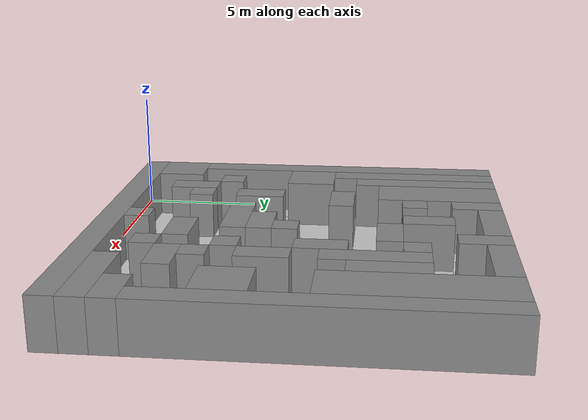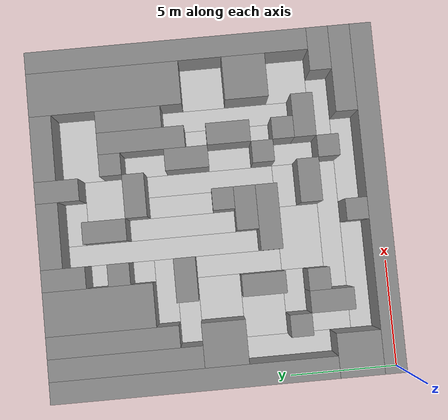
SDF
<sdf version="1.9">
 <world name="cave_world">
  <model name="cave_walls">
   <static>true</static>
   <link name="cave">
    <collision name="wall_0_collision">
     <pose>8.000 0.500 1.000 0 0 0</pose>
     <geometry><box><size>16.000 1.000 2.000</size></box></geometry>
    </collision>
    <visual name="wall_0_visual">
     <pose>8.000 0.500 1.000 0 0 0</pose>
     <geometry><box><size>16.000 1.000 2.000</size></box></geometry>
     <material><ambient>0.55 0.55 0.55 1</ambient><diffuse>0.55 0.55 0.55 1</diffuse></material>
    </visual>
    <collision name="wall_1_collision">
     <pose>1.000 2.000 1.000 0 0 0</pose>
     <geometry><box><size>2.000 2.000 2.000</size></box></geometry>
    </collision>
    <visual name="wall_1_visual">
     <pose>1.000 2.000 1.000 0 0 0</pose>
     <geometry><box><size>2.000 2.000 2.000</size></box></geometry>
     <material><ambient>0.55 0.55 0.55 1</ambient><diffuse>0.55 0.55 0.55 1</diffuse></material>
    </visual>
    <collision name="wall_2_collision">
     <pose>7.500 1.500 1.000 0 0 0</pose>
     <geometry><box><size>1.000 1.000 2.000</size></box></geometry>
    </collision>
    <visual name="wall_2_visual">
     <pose>7.500 1.500 1.000 0 0 0</pose>
     <geometry><box><size>1.000 1.000 2.000</size></box></geometry>
     <material><ambient>0.55 0.55 0.55 1</ambient><diffuse>0.55 0.55 0.55 1</diffuse></material>
    </visual>
    <collision name="wall_3_collision">
     <pose>14.000 1.500 1.000 0 0 0</pose>
     <geometry><box><size>4.000 1.000 2.000</size></box></geometry>
    </collision>
    <visual name="wall_3_visual">
     <pose>14.000 1.500 1.000 0 0 0</pose>
     <geometry><box><size>4.000 1.000 2.000</size></box></geometry>
     <material><ambient>0.55 0.55 0.55 1</ambient><diffuse>0.55 0.55 0.55 1</diffuse></material>
    </visual>
    <collision name="wall_4_collision">
     <pose>3.500 3.000 1.000 0 0 0</pose>
     <geometry><box><size>1.000 2.000 2.000</size></box></geometry>
    </collision>
    <visual name="wall_4_visual">
     <pose>3.500 3.000 1.000 0 0 0</pose>
     <geometry><box><size>1.000 2.000 2.000</size></box></geometry>
     <material><ambient>0.55 0.55 0.55 1</ambient><diffuse>0.55 0.55 0.55 1</diffuse></material>
    </visual>
    <collision name="wall_5_collision">
     <pose>10.500 2.500 1.000 0 0 0</pose>
     <geometry><box><size>1.000 1.000 2.000</size></box></geometry>
    </collision>
    <visual name="wall_5_visual">
     <pose>10.500 2.500 1.000 0 0 0</pose>
     <geometry><box><size>1.000 1.000 2.000</size></box></geometry>
     <material><ambient>0.55 0.55 0.55 1</ambient><diffuse>0.55 0.55 0.55 1</diffuse></material>
    </visual>
    <collision name="wall_6_collision">
     <pose>15.000 2.500 1.000 0 0 0</pose>
     <geometry><box><size>2.000 1.000 2.000</size></box></geometry>
    </collision>
    <visual name="wall_6_visual">
     <pose>15.000 2.500 1.000 0 0 0</pose>
     <geometry><box><size>2.000 1.000 2.000</size></box></geometry>
     <material><ambient>0.55 0.55 0.55 1</ambient><diffuse>0.55 0.55 0.55 1</diffuse></material>
    </visual>
    <collision name="wall_7_collision">
     <pose>0.500 9.500 1.000 0 0 0</pose>
     <geometry><box><size>1.000 13.000 2.000</size></box></geometry>
    </collision>
    <visual name="wall_7_visual">
     <pose>0.500 9.500 1.000 0 0 0</pose>
     <geometry><box><size>1.000 13.000 2.000</size></box></geometry>
     <material><ambient>0.55 0.55 0.55 1</ambient><diffuse>0.55 0.55 0.55 1</diffuse></material>
    </visual>
    <collision name="wall_8_collision">
     <pose>4.500 3.500 1.000 0 0 0</pose>
     <geometry><box><size>1.000 1.000 2.000</size></box></geometry>
    </collision>
    <visual name="wall_8_visual">
     <pose>4.500 3.500 1.000 0 0 0</pose>
     <geometry><box><size>1.000 1.000 2.000</size></box></geometry>
     <material><ambient>0.55 0.55 0.55 1</ambient><diffuse>0.55 0.55 0.55 1</diffuse></material>
    </visual>
    <collision name="wall_9_collision">
     <pose>9.000 3.500 1.000 0 0 0</pose>
     <geometry><box><size>2.000 1.000 2.000</size></box></geometry>
    </collision>
    <visual name="wall_9_visual">
     <pose>9.000 3.500 1.000 0 0 0</pose>
     <geometry><box><size>2.000 1.000 2.000</size></box></geometry>
     <material><ambient>0.55 0.55 0.55 1</ambient><diffuse>0.55 0.55 0.55 1</diffuse></material>
    </visual>
    <collision name="wall_10_collision">
     <pose>12.000 3.500 1.000 0 0 0</pose>
     <geometry><box><size>2.000 1.000 2.000</size></box></geometry>
    </collision>
    <visual name="wall_10_visual">
     <pose>12.000 3.500 1.000 0 0 0</pose>
     <geometry><box><size>2.000 1.000 2.000</size></box></geometry>
     <material><ambient>0.55 0.55 0.55 1</ambient><diffuse>0.55 0.55 0.55 1</diffuse></material>
    </visual>
    <collision name="wall_11_collision">
     <pose>15.500 9.500 1.000 0 0 0</pose>
     <geometry><box><size>1.000 13.000 2.000</size></box></geometry>
    </collision>
    <visual name="wall_11_visual">
     <pose>15.500 9.500 1.000 0 0 0</pose>
     <geometry><box><size>1.000 13.000 2.000</size></box></geometry>
     <material><ambient>0.55 0.55 0.55 1</ambient><diffuse>0.55 0.55 0.55 1</diffuse></material>
    </visual>
    <collision name="wall_12_collision">
     <pose>2.500 4.500 1.000 0 0 0</pose>
     <geometry><box><size>1.000 1.000 2.000</size></box></geometry>
    </collision>
    <visual name="wall_12_visual">
     <pose>2.500 4.500 1.000 0 0 0</pose>
     <geometry><box><size>1.000 1.000 2.000</size></box></geometry>
     <material><ambient>0.55 0.55 0.55 1</ambient><diffuse>0.55 0.55 0.55 1</diffuse></material>
    </visual>
    <collision name="wall_13_collision">
     <pose>11.500 4.500 1.000 0 0 0</pose>
     <geometry><box><size>1.000 1.000 2.000</size></box></geometry>
    </collision>
    <visual name="wall_13_visual">
     <pose>11.500 4.500 1.000 0 0 0</pose>
     <geometry><box><size>1.000 1.000 2.000</size></box></geometry>
     <material><ambient>0.55 0.55 0.55 1</ambient><diffuse>0.55 0.55 0.55 1</diffuse></material>
    </visual>
    <collision name="wall_14_collision">
     <pose>4.500 6.000 1.000 0 0 0</pose>
     <geometry><box><size>1.000 2.000 2.000</size></box></geometry>
    </collision>
    <visual name="wall_14_visual">
     <pose>4.500 6.000 1.000 0 0 0</pose>
     <geometry><box><size>1.000 2.000 2.000</size></box></geometry>
     <material><ambient>0.55 0.55 0.55 1</ambient><diffuse>0.55 0.55 0.55 1</diffuse></material>
    </visual>
    <collision name="wall_15_collision">
     <pose>7.500 5.500 1.000 0 0 0</pose>
     <geometry><box><size>3.000 1.000 2.000</size></box></geometry>
    </collision>
    <visual name="wall_15_visual">
     <pose>7.500 5.500 1.000 0 0 0</pose>
     <geometry><box><size>3.000 1.000 2.000</size></box></geometry>
     <material><ambient>0.55 0.55 0.55 1</ambient><diffuse>0.55 0.55 0.55 1</diffuse></material>
    </visual>
    <collision name="wall_16_collision">
     <pose>10.500 5.500 1.000 0 0 0</pose>
     <geometry><box><size>1.000 1.000 2.000</size></box></geometry>
    </collision>
    <visual name="wall_16_visual">
     <pose>10.500 5.500 1.000 0 0 0</pose>
     <geometry><box><size>1.000 1.000 2.000</size></box></geometry>
     <material><ambient>0.55 0.55 0.55 1</ambient><diffuse>0.55 0.55 0.55 1</diffuse></material>
    </visual>
    <collision name="wall_17_collision">
     <pose>14.000 6.000 1.000 0 0 0</pose>
     <geometry><box><size>2.000 2.000 2.000</size></box></geometry>
    </collision>
    <visual name="wall_17_visual">
     <pose>14.000 6.000 1.000 0 0 0</pose>
     <geometry><box><size>2.000 2.000 2.000</size></box></geometry>
     <material><ambient>0.55 0.55 0.55 1</ambient><diffuse>0.55 0.55 0.55 1</diffuse></material>
    </visual>
    <collision name="wall_18_collision">
     <pose>8.000 6.500 1.000 0 0 0</pose>
     <geometry><box><size>2.000 1.000 2.000</size></box></geometry>
    </collision>
    <visual name="wall_18_visual">
     <pose>8.000 6.500 1.000 0 0 0</pose>
     <geometry><box><size>2.000 1.000 2.000</size></box></geometry>
     <material><ambient>0.55 0.55 0.55 1</ambient><diffuse>0.55 0.55 0.55 1</diffuse></material>
    </visual>
    <collision name="wall_19_collision">
     <pose>11.500 7.000 1.000 0 0 0</pose>
     <geometry><box><size>1.000 2.000 2.000</size></box></geometry>
    </collision>
    <visual name="wall_19_visual">
     <pose>11.500 7.000 1.000 0 0 0</pose>
     <geometry><box><size>1.000 2.000 2.000</size></box></geometry>
     <material><ambient>0.55 0.55 0.55 1</ambient><diffuse>0.55 0.55 0.55 1</diffuse></material>
    </visual>
    <collision name="wall_20_collision">
     <pose>2.000 8.000 1.000 0 0 0</pose>
     <geometry><box><size>2.000 2.000 2.000</size></box></geometry>
    </collision>
    <visual name="wall_20_visual">
     <pose>2.000 8.000 1.000 0 0 0</pose>
     <geometry><box><size>2.000 2.000 2.000</size></box></geometry>
     <material><ambient>0.55 0.55 0.55 1</ambient><diffuse>0.55 0.55 0.55 1</diffuse></material>
    </visual>
    <collision name="wall_21_collision">
     <pose>8.500 7.500 1.000 0 0 0</pose>
     <geometry><box><size>1.000 1.000 2.000</size></box></geometry>
    </collision>
    <visual name="wall_21_visual">
     <pose>8.500 7.500 1.000 0 0 0</pose>
     <geometry><box><size>1.000 1.000 2.000</size></box></geometry>
     <material><ambient>0.55 0.55 0.55 1</ambient><diffuse>0.55 0.55 0.55 1</diffuse></material>
    </visual>
    <collision name="wall_22_collision">
     <pose>10.500 9.000 1.000 0 0 0</pose>
     <geometry><box><size>1.000 2.000 2.000</size></box></geometry>
    </collision>
    <visual name="wall_22_visual">
     <pose>10.500 9.000 1.000 0 0 0</pose>
     <geometry><box><size>1.000 2.000 2.000</size></box></geometry>
     <material><ambient>0.55 0.55 0.55 1</ambient><diffuse>0.55 0.55 0.55 1</diffuse></material>
    </visual>
    <collision name="wall_23_collision">
     <pose>1.500 12.500 1.000 0 0 0</pose>
     <geometry><box><size>1.000 7.000 2.000</size></box></geometry>
    </collision>
    <visual name="wall_23_visual">
     <pose>1.500 12.500 1.000 0 0 0</pose>
     <geometry><box><size>1.000 7.000 2.000</size></box></geometry>
     <material><ambient>0.55 0.55 0.55 1</ambient><diffuse>0.55 0.55 0.55 1</diffuse></material>
    </visual>
    <collision name="wall_24_collision">
     <pose>5.000 9.500 1.000 0 0 0</pose>
     <geometry><box><size>2.000 1.000 2.000</size></box></geometry>
    </collision>
    <visual name="wall_24_visual">
     <pose>5.000 9.500 1.000 0 0 0</pose>
     <geometry><box><size>2.000 1.000 2.000</size></box></geometry>
     <material><ambient>0.55 0.55 0.55 1</ambient><diffuse>0.55 0.55 0.55 1</diffuse></material>
    </visual>
    <collision name="wall_25_collision">
     <pose>11.500 11.000 1.000 0 0 0</pose>
     <geometry><box><size>1.000 4.000 2.000</size></box></geometry>
    </collision>
    <visual name="wall_25_visual">
     <pose>11.500 11.000 1.000 0 0 0</pose>
     <geometry><box><size>1.000 4.000 2.000</size></box></geometry>
     <material><ambient>0.55 0.55 0.55 1</ambient><diffuse>0.55 0.55 0.55 1</diffuse></material>
    </visual>
    <collision name="wall_26_collision">
     <pose>14.000 12.500 1.000 0 0 0</pose>
     <geometry><box><size>2.000 7.000 2.000</size></box></geometry>
    </collision>
    <visual name="wall_26_visual">
     <pose>14.000 12.500 1.000 0 0 0</pose>
     <geometry><box><size>2.000 7.000 2.000</size></box></geometry>
     <material><ambient>0.55 0.55 0.55 1</ambient><diffuse>0.55 0.55 0.55 1</diffuse></material>
    </visual>
    <collision name="wall_27_collision">
     <pose>2.500 13.000 1.000 0 0 0</pose>
     <geometry><box><size>1.000 6.000 2.000</size></box></geometry>
    </collision>
    <visual name="wall_27_visual">
     <pose>2.500 13.000 1.000 0 0 0</pose>
     <geometry><box><size>1.000 6.000 2.000</size></box></geometry>
     <material><ambient>0.55 0.55 0.55 1</ambient><diffuse>0.55 0.55 0.55 1</diffuse></material>
    </visual>
    <collision name="wall_28_collision">
     <pose>12.500 11.500 1.000 0 0 0</pose>
     <geometry><box><size>1.000 3.000 2.000</size></box></geometry>
    </collision>
    <visual name="wall_28_visual">
     <pose>12.500 11.500 1.000 0 0 0</pose>
     <geometry><box><size>1.000 3.000 2.000</size></box></geometry>
     <material><ambient>0.55 0.55 0.55 1</ambient><diffuse>0.55 0.55 0.55 1</diffuse></material>
    </visual>
    <collision name="wall_29_collision">
     <pose>4.000 13.500 1.000 0 0 0</pose>
     <geometry><box><size>2.000 5.000 2.000</size></box></geometry>
    </collision>
    <visual name="wall_29_visual">
     <pose>4.000 13.500 1.000 0 0 0</pose>
     <geometry><box><size>2.000 5.000 2.000</size></box></geometry>
     <material><ambient>0.55 0.55 0.55 1</ambient><diffuse>0.55 0.55 0.55 1</diffuse></material>
    </visual>
    <collision name="wall_30_collision">
     <pose>9.000 11.500 1.000 0 0 0</pose>
     <geometry><box><size>2.000 1.000 2.000</size></box></geometry>
    </collision>
    <visual name="wall_30_visual">
     <pose>9.000 11.500 1.000 0 0 0</pose>
     <geometry><box><size>2.000 1.000 2.000</size></box></geometry>
     <material><ambient>0.55 0.55 0.55 1</ambient><diffuse>0.55 0.55 0.55 1</diffuse></material>
    </visual>
    <collision name="wall_31_collision">
     <pose>5.500 12.500 1.000 0 0 0</pose>
     <geometry><box><size>1.000 1.000 2.000</size></box></geometry>
    </collision>
    <visual name="wall_31_visual">
     <pose>5.500 12.500 1.000 0 0 0</pose>
     <geometry><box><size>1.000 1.000 2.000</size></box></geometry>
     <material><ambient>0.55 0.55 0.55 1</ambient><diffuse>0.55 0.55 0.55 1</diffuse></material>
    </visual>
    <collision name="wall_32_collision">
     <pose>7.500 13.000 1.000 0 0 0</pose>
     <geometry><box><size>1.000 2.000 2.000</size></box></geometry>
    </collision>
    <visual name="wall_32_visual">
     <pose>7.500 13.000 1.000 0 0 0</pose>
     <geometry><box><size>1.000 2.000 2.000</size></box></geometry>
     <material><ambient>0.55 0.55 0.55 1</ambient><diffuse>0.55 0.55 0.55 1</diffuse></material>
    </visual>
    <collision name="wall_33_collision">
     <pose>10.500 12.500 1.000 0 0 0</pose>
     <geometry><box><size>1.000 1.000 2.000</size></box></geometry>
    </collision>
    <visual name="wall_33_visual">
     <pose>10.500 12.500 1.000 0 0 0</pose>
     <geometry><box><size>1.000 1.000 2.000</size></box></geometry>
     <material><ambient>0.55 0.55 0.55 1</ambient><diffuse>0.55 0.55 0.55 1</diffuse></material>
    </visual>
    <collision name="wall_34_collision">
     <pose>5.500 15.000 1.000 0 0 0</pose>
     <geometry><box><size>1.000 2.000 2.000</size></box></geometry>
    </collision>
    <visual name="wall_34_visual">
     <pose>5.500 15.000 1.000 0 0 0</pose>
     <geometry><box><size>1.000 2.000 2.000</size></box></geometry>
     <material><ambient>0.55 0.55 0.55 1</ambient><diffuse>0.55 0.55 0.55 1</diffuse></material>
    </visual>
    <collision name="wall_35_collision">
     <pose>9.500 15.000 1.000 0 0 0</pose>
     <geometry><box><size>1.000 2.000 2.000</size></box></geometry>
    </collision>
    <visual name="wall_35_visual">
     <pose>9.500 15.000 1.000 0 0 0</pose>
     <geometry><box><size>1.000 2.000 2.000</size></box></geometry>
     <material><ambient>0.55 0.55 0.55 1</ambient><diffuse>0.55 0.55 0.55 1</diffuse></material>
    </visual>
    <collision name="wall_36_collision">
     <pose>7.500 15.500 1.000 0 0 0</pose>
     <geometry><box><size>3.000 1.000 2.000</size></box></geometry>
    </collision>
    <visual name="wall_36_visual">
     <pose>7.500 15.500 1.000 0 0 0</pose>
     <geometry><box><size>3.000 1.000 2.000</size></box></geometry>
     <material><ambient>0.55 0.55 0.55 1</ambient><diffuse>0.55 0.55 0.55 1</diffuse></material>
    </visual>
    <collision name="wall_37_collision">
     <pose>11.500 15.500 1.000 0 0 0</pose>
     <geometry><box><size>3.000 1.000 2.000</size></box></geometry>
    </collision>
    <visual name="wall_37_visual">
     <pose>11.500 15.500 1.000 0 0 0</pose>
     <geometry><box><size>3.000 1.000 2.000</size></box></geometry>
     <material><ambient>0.55 0.55 0.55 1</ambient><diffuse>0.55 0.55 0.55 1</diffuse></material>
    </visual>
    <collision name="floor_0_collision">
     <pose>4.500 1.500 0.050 0 0 0</pose>
     <geometry><box><size>5.000 1.000 0.100</size></box></geometry>
    </collision>
    <visual name="floor_0_visual">
     <pose>4.500 1.500 0.050 0 0 0</pose>
     <geometry><box><size>5.000 1.000 0.100</size></box></geometry>
     <material><ambient>0.82 0.82 0.82 1</ambient><diffuse>0.82 0.82 0.82 1</diffuse></material>
    </visual>
    <collision name="floor_1_collision">
     <pose>10.000 1.500 0.050 0 0 0</pose>
     <geometry><box><size>4.000 1.000 0.100</size></box></geometry>
    </collision>
    <visual name="floor_1_visual">
     <pose>10.000 1.500 0.050 0 0 0</pose>
     <geometry><box><size>4.000 1.000 0.100</size></box></geometry>
     <material><ambient>0.82 0.82 0.82 1</ambient><diffuse>0.82 0.82 0.82 1</diffuse></material>
    </visual>
    <collision name="floor_2_collision">
     <pose>2.500 3.000 0.050 0 0 0</pose>
     <geometry><box><size>1.000 2.000 0.100</size></box></geometry>
    </collision>
    <visual name="floor_2_visual">
     <pose>2.500 3.000 0.050 0 0 0</pose>
     <geometry><box><size>1.000 2.000 0.100</size></box></geometry>
     <material><ambient>0.82 0.82 0.82 1</ambient><diffuse>0.82 0.82 0.82 1</diffuse></material>
    </visual>
    <collision name="floor_3_collision">
     <pose>7.000 2.500 0.050 0 0 0</pose>
     <geometry><box><size>6.000 1.000 0.100</size></box></geometry>
    </collision>
    <visual name="floor_3_visual">
     <pose>7.000 2.500 0.050 0 0 0</pose>
     <geometry><box><size>6.000 1.000 0.100</size></box></geometry>
     <material><ambient>0.82 0.82 0.82 1</ambient><diffuse>0.82 0.82 0.82 1</diffuse></material>
    </visual>
    <collision name="floor_4_collision">
     <pose>12.500 2.500 0.050 0 0 0</pose>
     <geometry><box><size>3.000 1.000 0.100</size></box></geometry>
    </collision>
    <visual name="floor_4_visual">
     <pose>12.500 2.500 0.050 0 0 0</pose>
     <geometry><box><size>3.000 1.000 0.100</size></box></geometry>
     <material><ambient>0.82 0.82 0.82 1</ambient><diffuse>0.82 0.82 0.82 1</diffuse></material>
    </visual>
    <collision name="floor_5_collision">
     <pose>1.500 5.000 0.050 0 0 0</pose>
     <geometry><box><size>1.000 4.000 0.100</size></box></geometry>
    </collision>
    <visual name="floor_5_visual">
     <pose>1.500 5.000 0.050 0 0 0</pose>
     <geometry><box><size>1.000 4.000 0.100</size></box></geometry>
     <material><ambient>0.82 0.82 0.82 1</ambient><diffuse>0.82 0.82 0.82 1</diffuse></material>
    </visual>
    <collision name="floor_6_collision">
     <pose>6.500 4.000 0.050 0 0 0</pose>
     <geometry><box><size>3.000 2.000 0.100</size></box></geometry>
    </collision>
    <visual name="floor_6_visual">
     <pose>6.500 4.000 0.050 0 0 0</pose>
     <geometry><box><size>3.000 2.000 0.100</size></box></geometry>
     <material><ambient>0.82 0.82 0.82 1</ambient><diffuse>0.82 0.82 0.82 1</diffuse></material>
    </visual>
    <collision name="floor_7_collision">
     <pose>10.500 4.000 0.050 0 0 0</pose>
     <geometry><box><size>1.000 2.000 0.100</size></box></geometry>
    </collision>
    <visual name="floor_7_visual">
     <pose>10.500 4.000 0.050 0 0 0</pose>
     <geometry><box><size>1.000 2.000 0.100</size></box></geometry>
     <material><ambient>0.82 0.82 0.82 1</ambient><diffuse>0.82 0.82 0.82 1</diffuse></material>
    </visual>
    <collision name="floor_8_collision">
     <pose>14.000 4.000 0.050 0 0 0</pose>
     <geometry><box><size>2.000 2.000 0.100</size></box></geometry>
    </collision>
    <visual name="floor_8_visual">
     <pose>14.000 4.000 0.050 0 0 0</pose>
     <geometry><box><size>2.000 2.000 0.100</size></box></geometry>
     <material><ambient>0.82 0.82 0.82 1</ambient><diffuse>0.82 0.82 0.82 1</diffuse></material>
    </visual>
    <collision name="floor_9_collision">
     <pose>4.000 4.500 0.050 0 0 0</pose>
     <geometry><box><size>2.000 1.000 0.100</size></box></geometry>
    </collision>
    <visual name="floor_9_visual">
     <pose>4.000 4.500 0.050 0 0 0</pose>
     <geometry><box><size>2.000 1.000 0.100</size></box></geometry>
     <material><ambient>0.82 0.82 0.82 1</ambient><diffuse>0.82 0.82 0.82 1</diffuse></material>
    </visual>
    <collision name="floor_10_collision">
     <pose>9.000 4.500 0.050 0 0 0</pose>
     <geometry><box><size>2.000 1.000 0.100</size></box></geometry>
    </collision>
    <visual name="floor_10_visual">
     <pose>9.000 4.500 0.050 0 0 0</pose>
     <geometry><box><size>2.000 1.000 0.100</size></box></geometry>
     <material><ambient>0.82 0.82 0.82 1</ambient><diffuse>0.82 0.82 0.82 1</diffuse></material>
    </visual>
    <collision name="floor_11_collision">
     <pose>12.500 7.000 0.050 0 0 0</pose>
     <geometry><box><size>1.000 6.000 0.100</size></box></geometry>
    </collision>
    <visual name="floor_11_visual">
     <pose>12.500 7.000 0.050 0 0 0</pose>
     <geometry><box><size>1.000 6.000 0.100</size></box></geometry>
     <material><ambient>0.82 0.82 0.82 1</ambient><diffuse>0.82 0.82 0.82 1</diffuse></material>
    </visual>
    <collision name="floor_12_collision">
     <pose>3.000 6.000 0.050 0 0 0</pose>
     <geometry><box><size>2.000 2.000 0.100</size></box></geometry>
    </collision>
    <visual name="floor_12_visual">
     <pose>3.000 6.000 0.050 0 0 0</pose>
     <geometry><box><size>2.000 2.000 0.100</size></box></geometry>
     <material><ambient>0.82 0.82 0.82 1</ambient><diffuse>0.82 0.82 0.82 1</diffuse></material>
    </visual>
    <collision name="floor_13_collision">
     <pose>5.500 7.000 0.050 0 0 0</pose>
     <geometry><box><size>1.000 4.000 0.100</size></box></geometry>
    </collision>
    <visual name="floor_13_visual">
     <pose>5.500 7.000 0.050 0 0 0</pose>
     <geometry><box><size>1.000 4.000 0.100</size></box></geometry>
     <material><ambient>0.82 0.82 0.82 1</ambient><diffuse>0.82 0.82 0.82 1</diffuse></material>
    </visual>
    <collision name="floor_14_collision">
     <pose>9.500 8.000 0.050 0 0 0</pose>
     <geometry><box><size>1.000 6.000 0.100</size></box></geometry>
    </collision>
    <visual name="floor_14_visual">
     <pose>9.500 8.000 0.050 0 0 0</pose>
     <geometry><box><size>1.000 6.000 0.100</size></box></geometry>
     <material><ambient>0.82 0.82 0.82 1</ambient><diffuse>0.82 0.82 0.82 1</diffuse></material>
    </visual>
    <collision name="floor_15_collision">
     <pose>11.500 5.500 0.050 0 0 0</pose>
     <geometry><box><size>1.000 1.000 0.100</size></box></geometry>
    </collision>
    <visual name="floor_15_visual">
     <pose>11.500 5.500 0.050 0 0 0</pose>
     <geometry><box><size>1.000 1.000 0.100</size></box></geometry>
     <material><ambient>0.82 0.82 0.82 1</ambient><diffuse>0.82 0.82 0.82 1</diffuse></material>
    </visual>
    <collision name="floor_16_collision">
     <pose>6.500 10.500 0.050 0 0 0</pose>
     <geometry><box><size>1.000 9.000 0.100</size></box></geometry>
    </collision>
    <visual name="floor_16_visual">
     <pose>6.500 10.500 0.050 0 0 0</pose>
     <geometry><box><size>1.000 9.000 0.100</size></box></geometry>
     <material><ambient>0.82 0.82 0.82 1</ambient><diffuse>0.82 0.82 0.82 1</diffuse></material>
    </visual>
    <collision name="floor_17_collision">
     <pose>10.500 7.000 0.050 0 0 0</pose>
     <geometry><box><size>1.000 2.000 0.100</size></box></geometry>
    </collision>
    <visual name="floor_17_visual">
     <pose>10.500 7.000 0.050 0 0 0</pose>
     <geometry><box><size>1.000 2.000 0.100</size></box></geometry>
     <material><ambient>0.82 0.82 0.82 1</ambient><diffuse>0.82 0.82 0.82 1</diffuse></material>
    </visual>
    <collision name="floor_18_collision">
     <pose>4.000 8.000 0.050 0 0 0</pose>
     <geometry><box><size>2.000 2.000 0.100</size></box></geometry>
    </collision>
    <visual name="floor_18_visual">
     <pose>4.000 8.000 0.050 0 0 0</pose>
     <geometry><box><size>2.000 2.000 0.100</size></box></geometry>
     <material><ambient>0.82 0.82 0.82 1</ambient><diffuse>0.82 0.82 0.82 1</diffuse></material>
    </visual>
    <collision name="floor_19_collision">
     <pose>7.500 9.500 0.050 0 0 0</pose>
     <geometry><box><size>1.000 5.000 0.100</size></box></geometry>
    </collision>
    <visual name="floor_19_visual">
     <pose>7.500 9.500 0.050 0 0 0</pose>
     <geometry><box><size>1.000 5.000 0.100</size></box></geometry>
     <material><ambient>0.82 0.82 0.82 1</ambient><diffuse>0.82 0.82 0.82 1</diffuse></material>
    </visual>
    <collision name="floor_20_collision">
     <pose>14.000 8.000 0.050 0 0 0</pose>
     <geometry><box><size>2.000 2.000 0.100</size></box></geometry>
    </collision>
    <visual name="floor_20_visual">
     <pose>14.000 8.000 0.050 0 0 0</pose>
     <geometry><box><size>2.000 2.000 0.100</size></box></geometry>
     <material><ambient>0.82 0.82 0.82 1</ambient><diffuse>0.82 0.82 0.82 1</diffuse></material>
    </visual>
    <collision name="floor_21_collision">
     <pose>8.500 9.500 0.050 0 0 0</pose>
     <geometry><box><size>1.000 3.000 0.100</size></box></geometry>
    </collision>
    <visual name="floor_21_visual">
     <pose>8.500 9.500 0.050 0 0 0</pose>
     <geometry><box><size>1.000 3.000 0.100</size></box></geometry>
     <material><ambient>0.82 0.82 0.82 1</ambient><diffuse>0.82 0.82 0.82 1</diffuse></material>
    </visual>
    <collision name="floor_22_collision">
     <pose>11.500 8.500 0.050 0 0 0</pose>
     <geometry><box><size>1.000 1.000 0.100</size></box></geometry>
    </collision>
    <visual name="floor_22_visual">
     <pose>11.500 8.500 0.050 0 0 0</pose>
     <geometry><box><size>1.000 1.000 0.100</size></box></geometry>
     <material><ambient>0.82 0.82 0.82 1</ambient><diffuse>0.82 0.82 0.82 1</diffuse></material>
    </visual>
    <collision name="floor_23_collision">
     <pose>3.000 9.500 0.050 0 0 0</pose>
     <geometry><box><size>2.000 1.000 0.100</size></box></geometry>
    </collision>
    <visual name="floor_23_visual">
     <pose>3.000 9.500 0.050 0 0 0</pose>
     <geometry><box><size>2.000 1.000 0.100</size></box></geometry>
     <material><ambient>0.82 0.82 0.82 1</ambient><diffuse>0.82 0.82 0.82 1</diffuse></material>
    </visual>
    <collision name="floor_24_collision">
     <pose>4.500 10.500 0.050 0 0 0</pose>
     <geometry><box><size>3.000 1.000 0.100</size></box></geometry>
    </collision>
    <visual name="floor_24_visual">
     <pose>4.500 10.500 0.050 0 0 0</pose>
     <geometry><box><size>3.000 1.000 0.100</size></box></geometry>
     <material><ambient>0.82 0.82 0.82 1</ambient><diffuse>0.82 0.82 0.82 1</diffuse></material>
    </visual>
    <collision name="floor_25_collision">
     <pose>10.500 11.000 0.050 0 0 0</pose>
     <geometry><box><size>1.000 2.000 0.100</size></box></geometry>
    </collision>
    <visual name="floor_25_visual">
     <pose>10.500 11.000 0.050 0 0 0</pose>
     <geometry><box><size>1.000 2.000 0.100</size></box></geometry>
     <material><ambient>0.82 0.82 0.82 1</ambient><diffuse>0.82 0.82 0.82 1</diffuse></material>
    </visual>
    <collision name="floor_26_collision">
     <pose>5.500 11.500 0.050 0 0 0</pose>
     <geometry><box><size>1.000 1.000 0.100</size></box></geometry>
    </collision>
    <visual name="floor_26_visual">
     <pose>5.500 11.500 0.050 0 0 0</pose>
     <geometry><box><size>1.000 1.000 0.100</size></box></geometry>
     <material><ambient>0.82 0.82 0.82 1</ambient><diffuse>0.82 0.82 0.82 1</diffuse></material>
    </visual>
    <collision name="floor_27_collision">
     <pose>9.000 13.000 0.050 0 0 0</pose>
     <geometry><box><size>2.000 2.000 0.100</size></box></geometry>
    </collision>
    <visual name="floor_27_visual">
     <pose>9.000 13.000 0.050 0 0 0</pose>
     <geometry><box><size>2.000 2.000 0.100</size></box></geometry>
     <material><ambient>0.82 0.82 0.82 1</ambient><diffuse>0.82 0.82 0.82 1</diffuse></material>
    </visual>
    <collision name="floor_28_collision">
     <pose>5.500 13.500 0.050 0 0 0</pose>
     <geometry><box><size>1.000 1.000 0.100</size></box></geometry>
    </collision>
    <visual name="floor_28_visual">
     <pose>5.500 13.500 0.050 0 0 0</pose>
     <geometry><box><size>1.000 1.000 0.100</size></box></geometry>
     <material><ambient>0.82 0.82 0.82 1</ambient><diffuse>0.82 0.82 0.82 1</diffuse></material>
    </visual>
    <collision name="floor_29_collision">
     <pose>11.500 14.000 0.050 0 0 0</pose>
     <geometry><box><size>3.000 2.000 0.100</size></box></geometry>
    </collision>
    <visual name="floor_29_visual">
     <pose>11.500 14.000 0.050 0 0 0</pose>
     <geometry><box><size>3.000 2.000 0.100</size></box></geometry>
     <material><ambient>0.82 0.82 0.82 1</ambient><diffuse>0.82 0.82 0.82 1</diffuse></material>
    </visual>
    <collision name="floor_30_collision">
     <pose>8.000 14.500 0.050 0 0 0</pose>
     <geometry><box><size>2.000 1.000 0.100</size></box></geometry>
    </collision>
    <visual name="floor_30_visual">
     <pose>8.000 14.500 0.050 0 0 0</pose>
     <geometry><box><size>2.000 1.000 0.100</size></box></geometry>
     <material><ambient>0.82 0.82 0.82 1</ambient><diffuse>0.82 0.82 0.82 1</diffuse></material>
    </visual>
   </link>
  </model>
 </world>
</sdf>
